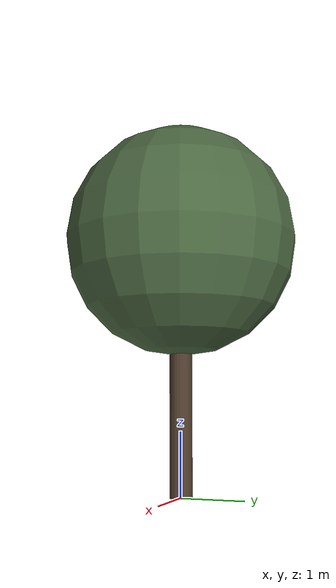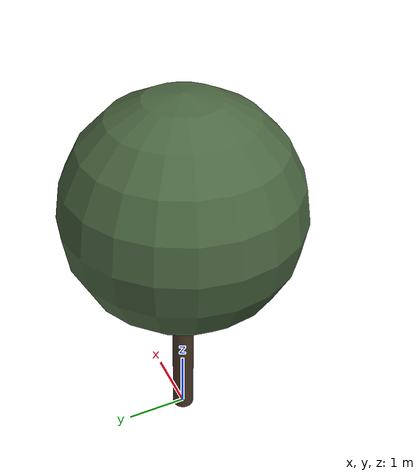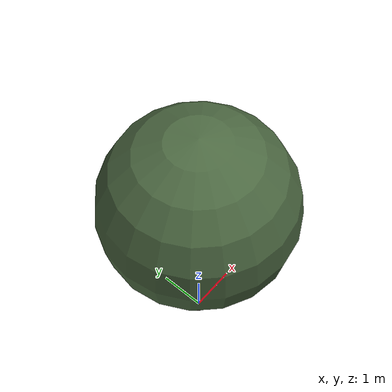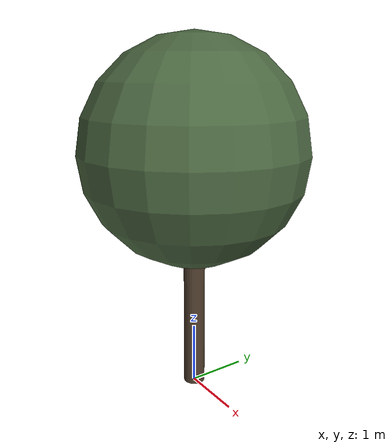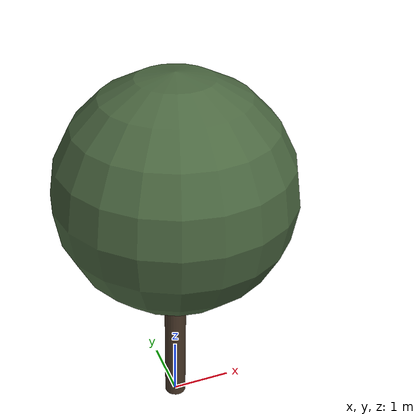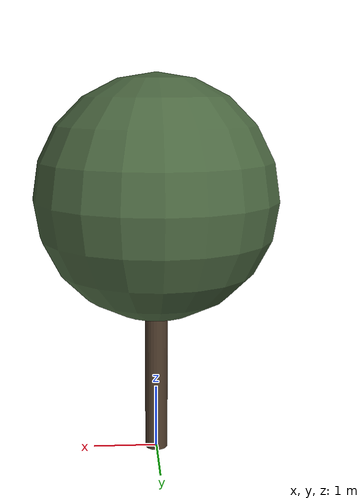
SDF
<?xml version="1.0" ?>
<sdf version="1.10">
  <model name="chene_vert_07">
    <static>true</static>

    <!-- Tronc -->
    <link name="trunk">
      <pose>0 0 1.7357386566132187 0 0 0</pose>
      <visual name="trunk_visual">
        <geometry>
          <cylinder>
            <radius>0.17639593156949004</radius>
            <length>3.4714773132264374</length>
          </cylinder>
        </geometry>
        <material>
          <ambient>0.29 0.22 0.16 1</ambient>
          <diffuse>0.29 0.22 0.16 1</diffuse>
          <specular>0.1 0.1 0.1 1</specular>
        </material>
      </visual>
      <collision name="trunk_collision">
        <geometry>
          <cylinder>
            <radius>0.17639593156949004</radius>
            <length>3.4714773132264374</length>
          </cylinder>
        </geometry>
      </collision>
    </link>

    <!-- Feuillage -->
    <link name="crown">
      <pose>0 0 4.025291122522304 0 0 0</pose>
      <visual name="crown_visual">
        <geometry>
          <sphere>
              <radius>1.84604603098622</radius>
            </sphere>
        </geometry>
        <material>
          <ambient>0.29 0.40 0.25 1</ambient>
          <diffuse>0.29 0.40 0.25 1</diffuse>
          <specular>0.1 0.1 0.1 1</specular>
        </material>
      </visual>
      <collision name="crown_collision">
        <geometry>
          <sphere>
            <radius>1.4768368247889763</radius>
          </sphere>
        </geometry>
      </collision>
    </link>

    <!-- Joint tronc-feuillage -->
    <joint name="trunk_crown_joint" type="fixed">
      <parent>trunk</parent>
      <child>crown</child>
    </joint>

  </model>
</sdf>
